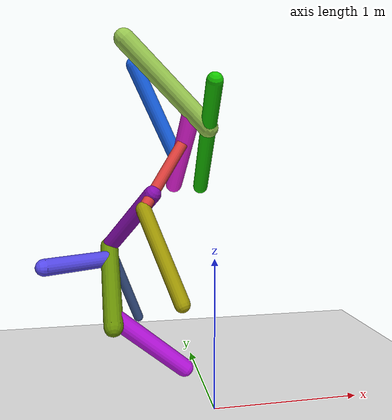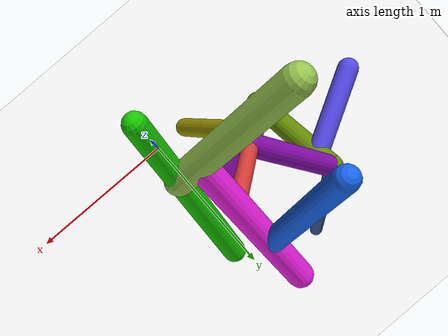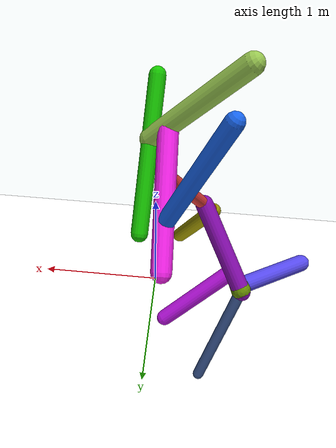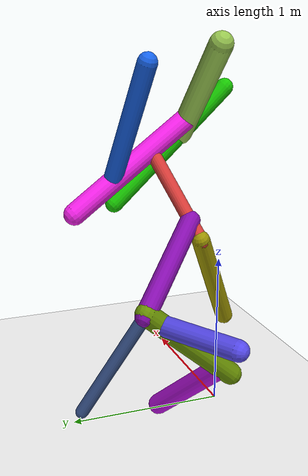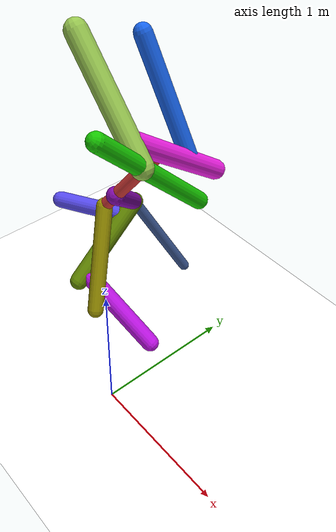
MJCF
<mujoco model="morphology">
  <option timestep="0.01"/>
  <default>
    <default class="/"/>
    <default class="0/"/>
    <default class="0/1/"/>
    <default class="0/1/2/"/>
    <default class="0/1/2/3/"/>
    <default class="0/1/2/3/4/"/>
    <default class="0/1/2/3/5/"/>
    <default class="0/1/2/3/5/6/"/>
    <default class="0/1/2/3/5/7/"/>
    <default class="0/1/2/3/5/7/8/"/>
    <default class="0/1/2/3/5/7/9/"/>
    <default class="0/1/2/10/"/>
  </default>
  <asset>
    <texture name="texplane" type="2d" builtin="checker" rgb1="0.10000000000000001 0.20000000000000001 0.29999999999999999" rgb2="0.20000000000000001 0.29999999999999999 0.40000000000000002" width="300" height="300"/>
    <material name="MatPlane" class="/" texture="texplane" texrepeat="20 20" specular="1" shininess="1" reflectance="0.5"/>
  </asset>
  <worldbody>
    <light name="//unnamed_light_0" class="/" directional="true" pos="0 0 1.5" dir="0 0 -1.3" cutoff="100" exponent="1" diffuse="1 1 1" specular="0.10000000000000001 0.10000000000000001 0.10000000000000001"/>
    <geom name="ground" class="/" type="plane" size="15 15 0.5" material="MatPlane" rgba="1 1 1 1"/>
    <site name="body" class="/" size="9.9999999999999995e-07 9.9999999999999995e-07 9.9999999999999995e-07" pos="0 0 2.1081162452697755"/>
    <body pos="0 0 2.1081162452697755" name="0/">
      <freejoint name="0/"/>
      <geom name="0/geom" class="0/" type="capsule" contype="1" conaffinity="1" condim="3" size="0.054532362057693629" rgba="0.089948247155194894 0.77727303640983136 0.0068383372211445748 1" friction="0.59999999999999998 0.10000000000000001 0.10000000000000001" fromto="0 0 0 0.035741624652195436 0.69887716058531857 -0.67697807042462488"/>
      <site name="0/end0" class="0/" size="0.0050000000000000001" pos="0.035741624652195436 0.69887716058531857 -0.67697807042462488"/>
      <site name="0/attach1" class="0/" size="9.9999999999999995e-07 9.9999999999999995e-07 9.9999999999999995e-07" pos="0.014088524846871672 0.27548127253953975 -0.26684915581694796"/>
      <body pos="0.014088524846871672 0.27548127253953975 -0.26684915581694796" name="0/1/">
        <joint name="0/1/joint/" class="0/" type="hinge" axis="0 1 0" limited="true" range="-42.57887896551469 42.57887896551469"/>
        <geom name="0/1/geom" class="0/1/" type="capsule" contype="1" conaffinity="1" condim="3" size="0.067618878504266983" rgba="0.59063408002940121 0.77280426457163209 0.30945196084229798 1" friction="0.59999999999999998 0.10000000000000001 0.10000000000000001" fromto="0 0 0 -0.54711652665183941 0.0063372487387496346 0.55515026486872454"/>
        <site name="0/1/end1" class="0/1/" size="0.0050000000000000001" pos="-0.54711652665183941 0.0063372487387496346 0.55515026486872454"/>
        <site name="0/1/attach2" class="0/1/" size="9.9999999999999995e-07 9.9999999999999995e-07 9.9999999999999995e-07" pos="-0.10915738776038367 0.0012643696255037456 0.11076023072890542"/>
        <body pos="-0.10915738776038367 0.0012643696255037456 0.11076023072890542" name="0/1/2/">
          <joint name="0/1/2/joint/" class="0/1/" type="hinge" axis="-0.71226438950519921 -0.0080120587799130116 -0.70186554720750693" limited="true" range="-67.864362416009016 67.864362416009016"/>
          <geom name="0/1/2/geom" class="0/1/2/" type="capsule" contype="1" conaffinity="1" condim="3" size="0.065081208596451112" rgba="0.96023308425361475 0.13191269381157866 0.91465282219720934 1" friction="0.59999999999999998 0.10000000000000001 0.10000000000000001" fromto="0 0 0 -0.035236812298586884 0.71487980483417357 -0.51736943106631961"/>
          <site name="0/1/2/end2" class="0/1/2/" size="0.0050000000000000001" pos="-0.035236812298586884 0.71487980483417357 -0.51736943106631961"/>
          <site name="0/1/2/attach3" class="0/1/2/" size="9.9999999999999995e-07 9.9999999999999995e-07 9.9999999999999995e-07" pos="-0.011807272572984449 0.23954439014159964 -0.17336193301954572"/>
          <body pos="-0.011807272572984449 0.23954439014159964 -0.17336193301954572" name="0/1/2/3/">
            <joint name="0/1/2/3/joint/" class="0/1/2/" type="hinge" axis="5.5511151231257827e-17 0.58628517332159724 0.81010474356299433" limited="true" range="-34.086432723167455 34.086432723167455"/>
            <geom name="0/1/2/3/geom" class="0/1/2/3/" type="capsule" contype="1" conaffinity="1" condim="3" size="0.041803031694138355" rgba="0.84877459856559911 0.234853850565237 0.22212786652186589 1" friction="0.59999999999999998 0.10000000000000001 0.10000000000000001" fromto="0 0 0 -0.32514311278757096 -0.19795076544583812 -0.4972712689124536"/>
            <site name="0/1/2/3/end3" class="0/1/2/3/" size="0.0050000000000000001" pos="-0.32514311278757096 -0.19795076544583812 -0.4972712689124536"/>
            <site name="0/1/2/3/attach4" class="0/1/2/3/" size="9.9999999999999995e-07 9.9999999999999995e-07 9.9999999999999995e-07" pos="-0.3163972215372125 -0.19262616898530779 -0.48389537297989083"/>
            <body pos="-0.3163972215372125 -0.19262616898530779 -0.48389537297989083" name="0/1/2/3/4/">
              <joint name="0/1/2/3/4/joint/" class="0/1/2/3/" type="hinge" axis="0.85465534669117993 -0.192023282138817 -0.48238086351846016" limited="true" range="-36.607254218387091 36.607254218387091"/>
              <geom name="0/1/2/3/4/geom" class="0/1/2/3/4/" type="capsule" contype="1" conaffinity="1" condim="3" size="0.053349129995713923" rgba="0.61501618158904958 0.58181840548505293 0.008400158338349617 1" friction="0.59999999999999998 0.10000000000000001 0.10000000000000001" fromto="0 0 0 0.2224578111029859 -0.273461385937534 -0.59650703079915313"/>
              <site name="0/1/2/3/4/end4" class="0/1/2/3/4/" size="0.0050000000000000001" pos="0.2224578111029859 -0.273461385937534 -0.59650703079915313"/>
            </body>
            <site name="0/1/2/3/attach5" class="0/1/2/3/" size="9.9999999999999995e-07 9.9999999999999995e-07 9.9999999999999995e-07" pos="-0.25053512098709796 -0.15252858516755113 -0.38316640464036206"/>
            <body pos="-0.25053512098709796 -0.15252858516755113 -0.38316640464036206" name="0/1/2/3/5/">
              <geom name="0/1/2/3/5/geom" class="0/1/2/3/5/" type="capsule" contype="1" conaffinity="1" condim="3" size="0.060158164474012392" rgba="0.52488799469346681 0.04776237151446372 0.68267495101970066 1" friction="0.59999999999999998 0.10000000000000001 0.10000000000000001" fromto="0 0 0 -0.30374040814380937 0.3872561802326917 -0.42100585988517703"/>
              <site name="0/1/2/3/5/end5" class="0/1/2/3/5/" size="0.0050000000000000001" pos="-0.30374040814380937 0.3872561802326917 -0.42100585988517703"/>
              <site name="0/1/2/3/5/attach6" class="0/1/2/3/5/" size="9.9999999999999995e-07 9.9999999999999995e-07 9.9999999999999995e-07" pos="-0.30000579922126602 0.38249471173119975 -0.41582942567157122"/>
              <body pos="-0.30000579922126602 0.38249471173119975 -0.41582942567157122" name="0/1/2/3/5/6/">
                <joint name="0/1/2/3/5/6/joint/" class="0/1/2/3/5/" type="hinge" axis="0 0.73599129544965847 0.6769909992181089" limited="true" range="-66.665705767505258 66.665705767505258"/>
                <geom name="0/1/2/3/5/6/geom" class="0/1/2/3/5/6/" type="capsule" contype="1" conaffinity="1" condim="3" size="0.039030631610751911" rgba="0.22489032758036998 0.33287019673889651 0.55674869963875973 1" friction="0.59999999999999998 0.10000000000000001 0.10000000000000001" fromto="0 0 0 0.22931095507783328 0.31294086711311175 -0.65539455923710255"/>
                <site name="0/1/2/3/5/6/end6" class="0/1/2/3/5/6/" size="0.0050000000000000001" pos="0.22931095507783328 0.31294086711311175 -0.65539455923710255"/>
              </body>
              <site name="0/1/2/3/5/attach7" class="0/1/2/3/5/" size="9.9999999999999995e-07 9.9999999999999995e-07 9.9999999999999995e-07" pos="-0.2977978393416309 0.37967965622271532 -0.41276903586898145"/>
              <body pos="-0.2977978393416309 0.37967965622271532 -0.41276903586898145" name="0/1/2/3/5/7/">
                <joint name="0/1/2/3/5/7/joint/" class="0/1/2/3/5/" type="hinge" axis="0 0.73599129544965847 0.6769909992181089" limited="true" range="-50.553223003984208 50.553223003984208"/>
                <geom name="0/1/2/3/5/7/geom" class="0/1/2/3/5/7/" type="capsule" contype="1" conaffinity="1" condim="3" size="0.065873552981092057" rgba="0.40361795941704004 0.55719313807052961 0.013725371647867579 1" friction="0.59999999999999998 0.10000000000000001 0.10000000000000001" fromto="0 0 0 0.016443688891996322 -0.53188163538673794 -0.45816553348703232"/>
                <site name="0/1/2/3/5/7/end7" class="0/1/2/3/5/7/" size="0.0050000000000000001" pos="0.016443688891996322 -0.53188163538673794 -0.45816553348703232"/>
                <site name="0/1/2/3/5/7/attach8" class="0/1/2/3/5/7/" size="9.9999999999999995e-07 9.9999999999999995e-07 9.9999999999999995e-07" pos="0.0027780904668593836 -0.089859113150983938 -0.077405094999297486"/>
                <body pos="0.0027780904668593836 -0.089859113150983938 -0.077405094999297486" name="0/1/2/3/5/7/8/">
                  <joint name="0/1/2/3/5/7/8/joint/" class="0/1/2/3/5/7/" type="hinge" axis="0.99972577500445914 0.017742398814776572 0.01528339216374941" limited="true" range="-62.74217450091853 62.74217450091853"/>
                  <geom name="0/1/2/3/5/7/8/geom" class="0/1/2/3/5/7/8/" type="capsule" contype="1" conaffinity="1" condim="3" size="0.059939598258509606" rgba="0.33325065026259126 0.2848010197636327 0.91939354624978853 1" friction="0.59999999999999998 0.10000000000000001 0.10000000000000001" fromto="0 0 0 -0.43715471372116588 -0.25208194260229377 0.00029503999784896706"/>
                  <site name="0/1/2/3/5/7/8/end8" class="0/1/2/3/5/7/8/" size="0.0050000000000000001" pos="-0.43715471372116588 -0.25208194260229377 0.00029503999784896706"/>
                </body>
                <site name="0/1/2/3/5/7/attach9" class="0/1/2/3/5/7/" size="9.9999999999999995e-07 9.9999999999999995e-07 9.9999999999999995e-07" pos="0.01453894243867512 -0.47027139298652576 -0.4050941587684187"/>
                <body pos="0.01453894243867512 -0.47027139298652576 -0.4050941587684187" name="0/1/2/3/5/7/9/">
                  <geom name="0/1/2/3/5/7/9/geom" class="0/1/2/3/5/7/9/" type="capsule" contype="1" conaffinity="1" condim="3" size="0.0648317337032039" rgba="0.7632532153368039 0.080983088873000653 0.91820366321402913 1" friction="0.59999999999999998 0.10000000000000001 0.10000000000000001" fromto="0 0 0 0.51233124594398216 0.19169356973521112 -0.47763578128048123"/>
                  <site name="0/1/2/3/5/7/9/end9" class="0/1/2/3/5/7/9/" size="0.0050000000000000001" pos="0.51233124594398216 0.19169356973521112 -0.47763578128048123"/>
                </body>
              </body>
            </body>
          </body>
          <site name="0/1/2/attach10" class="0/1/2/" size="9.9999999999999995e-07 9.9999999999999995e-07 9.9999999999999995e-07" pos="-0.023805095665755061 0.48295464412018563 -0.34952165073016328"/>
          <body pos="-0.023805095665755061 0.48295464412018563 -0.34952165073016328" name="0/1/2/10/">
            <geom name="0/1/2/10/geom" class="0/1/2/10/" type="capsule" contype="1" conaffinity="1" condim="3" size="0.056230674863623827" rgba="0.094057398236817358 0.3954779195264615 0.92548955394240895 1" friction="0.59999999999999998 0.10000000000000001 0.10000000000000001" fromto="0 0 0 -0.33491841655268129 -0.095532262644680177 0.70283217513912577"/>
            <site name="0/1/2/10/end10" class="0/1/2/10/" size="0.0050000000000000001" pos="-0.33491841655268129 -0.095532262644680177 0.70283217513912577"/>
          </body>
        </body>
      </body>
      <camera name="0/iso" class="0/" mode="trackcom" pos="-2.2999999999999998 -2.2999999999999998 1" xyaxes="0.45000000000000001 -0.45000000000000001 0 0.29999999999999999 0.14999999999999999 0.93999999999999995"/>
    </body>
  </worldbody>
  <actuator>
    <motor name="0/1/motor" class="0/1/" ctrllimited="true" ctrlrange="-1 1" gear="64" joint="0/1/joint/"/>
    <motor name="0/1/2/motor" class="0/1/2/" ctrllimited="true" ctrlrange="-1 1" gear="95" joint="0/1/2/joint/"/>
    <motor name="0/1/2/3/motor" class="0/1/2/3/" ctrllimited="true" ctrlrange="-1 1" gear="91" joint="0/1/2/3/joint/"/>
    <motor name="0/1/2/3/4/motor" class="0/1/2/3/4/" ctrllimited="true" ctrlrange="-1 1" gear="50" joint="0/1/2/3/4/joint/"/>
    <motor name="0/1/2/3/5/6/motor" class="0/1/2/3/5/6/" ctrllimited="true" ctrlrange="-1 1" gear="76" joint="0/1/2/3/5/6/joint/"/>
    <motor name="0/1/2/3/5/7/motor" class="0/1/2/3/5/7/" ctrllimited="true" ctrlrange="-1 1" gear="78" joint="0/1/2/3/5/7/joint/"/>
    <motor name="0/1/2/3/5/7/8/motor" class="0/1/2/3/5/7/8/" ctrllimited="true" ctrlrange="-1 1" gear="53" joint="0/1/2/3/5/7/8/joint/"/>
  </actuator>
  <sensor>
    <subtreelinvel name="velocity" body="0/"/>
  </sensor>
</mujoco>
